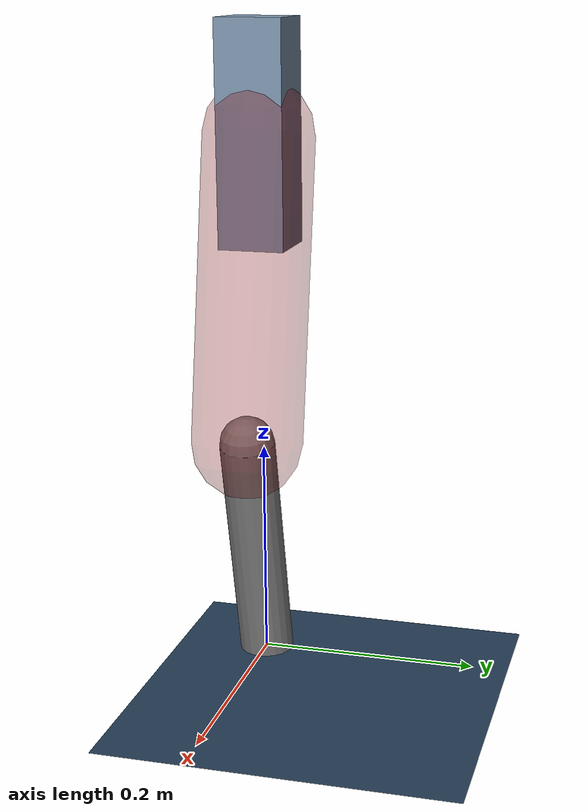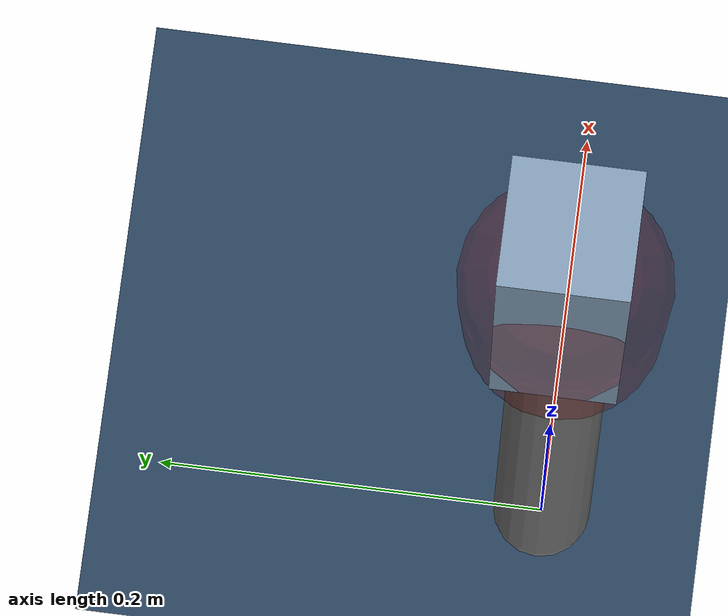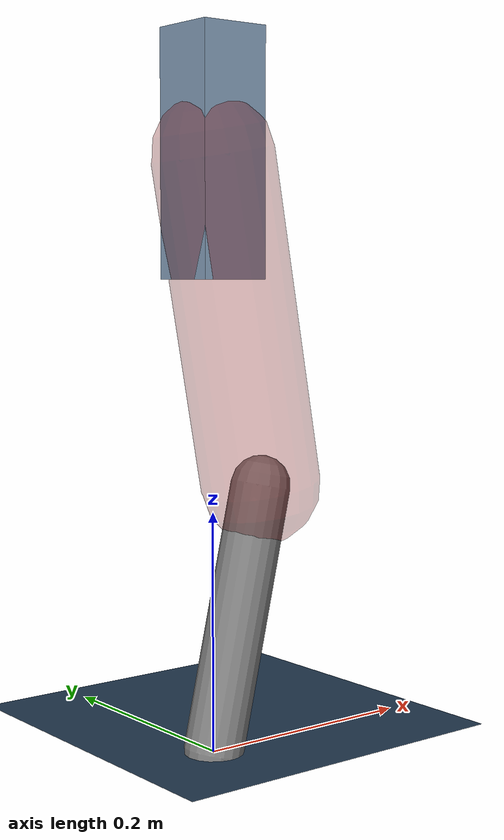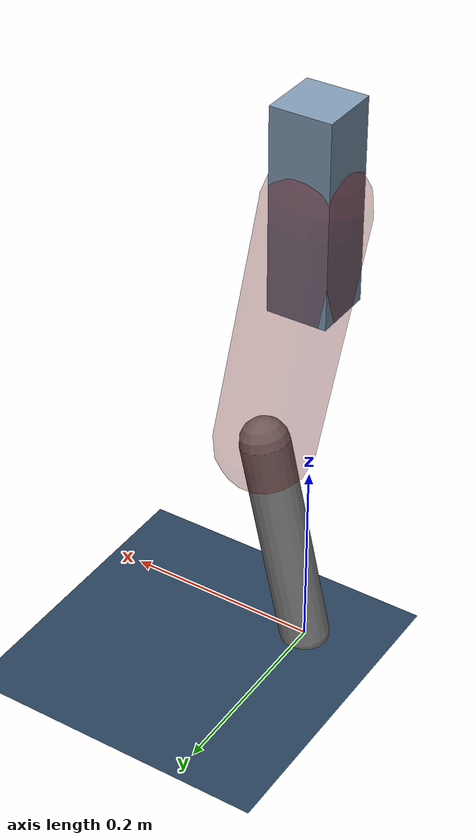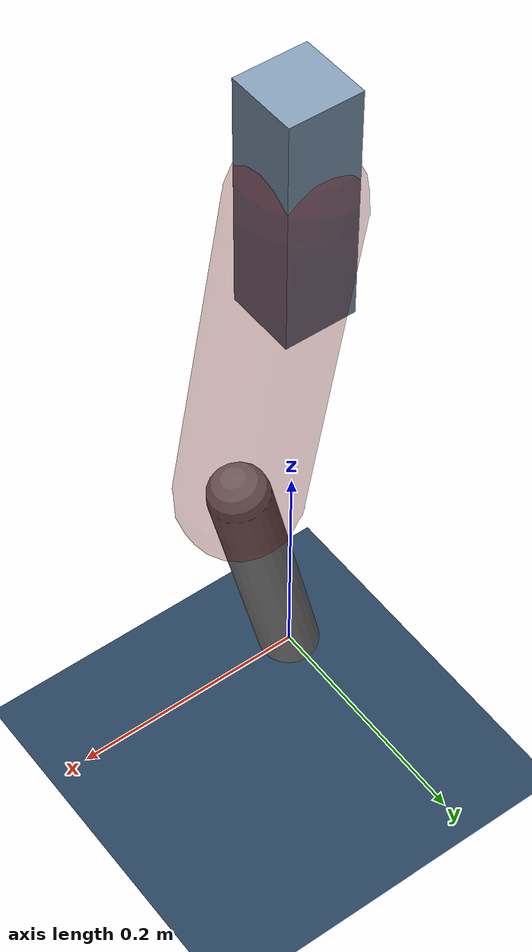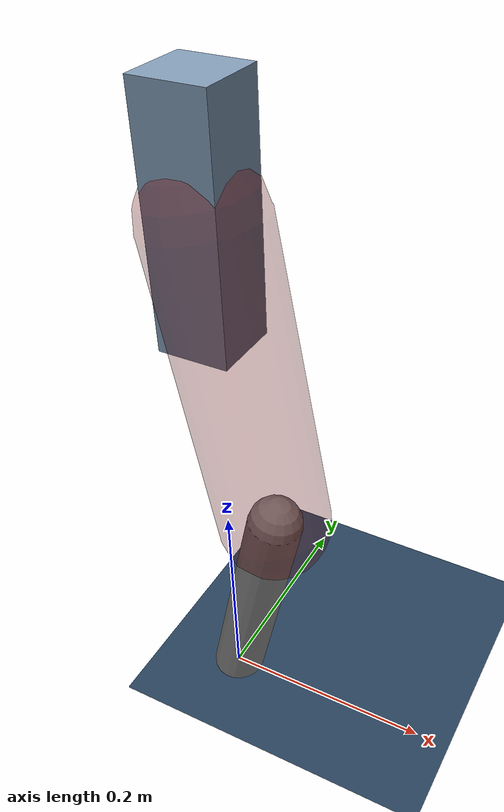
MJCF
<mujoco model="Hopper2D">
	<compiler inertiafromgeom="true" angle="radian" />
	<option timestep="0.001" integrator="implicit" cone="elliptic" solver="Newton" tolerance="1e-10" />

	<default>
		<geom contype="1" conaffinity="1" condim="3" friction="2 0.005 0.0001" solref="0.005 1" />
		<joint limited="true" damping="0.1" />
	</default>

	<asset>
		<texture name="skybox" type="skybox" builtin="gradient" rgb1=".4 .6 .8" rgb2="0 0 0" width="800" height="800" />
		<texture name="grid" type="2d" builtin="checker" rgb1=".1 .2 .3" rgb2=".2 .3 .4" width="300" height="300" mark="edge" markrgb=".2 .3 .4" />
		<material name="ground" texture="grid" texrepeat="1 1" texuniform="true" reflectance="0.1" />
		<material name="leg" rgba="0.5 0.6 0.7 1" />
	</asset>

	<worldbody>

		<geom name="floor" type="plane" size="5 5 0.25" material="ground" />

		<light directional="false" diffuse="0.8 0.8 0.8" specular="0.3 0.3 0.3" pos="0 0 2" dir="0 0 -1" />
		<light mode="targetbodycom" target="base" directional="false" diffuse="0.8 0.8 0.8" specular="0.3 0.3 0.3" pos="0 0 2" dir="0 0 -1" />

		<camera name="fixed" pos="0 -2 1" xyaxes="1 0 0 0 0 1" />
		<camera name="tracking" mode="trackcom" pos="0 -3 1" />

		<body name="root" pos="0 0 0.4900249700271915">
			<joint name="slide_x" type="slide" axis="1 0 0" range="-100 100" />
			<joint name="slide_z" type="slide" axis="0 0 1" range="0 10" />

			<body name="base" pos="0 0 0">
				<geom name="torso" type="box" size="0.03 0.03 0.1" mass="2.177" material="leg" />

				<body name="link1" pos="0 0 0" euler="0 1.3902439398315076 0">
					<joint type="hinge" axis="0 -1 0" pos="0 0 0" name="hinge1" limited="true" range="-3.14 3.14" stiffness="0" damping="0.1" />
					<geom name="thigh" type="capsule" fromto="0 0 0 0.2755415673658945 0 0" size="0.05" rgba="0.5 0 0 0.3" mass="0.9233080751513257" />

					<body name="link2" pos="0.2755415673658945 0 0" euler="0 0.40279375778439663 0">
						<joint type="hinge" axis="0 -1 0" pos="0 0 0" name="hinge2" limited="true" range="-3.14 3.14" stiffness="0" damping="0.1" />
						<geom name="shank" type="capsule" fromto="0 0 0 0.2244834026612969 0 0" size="0.025" mass="0.4213867221290375" />

					</body>
				</body>
			</body>
		</body>
	</worldbody>

	<actuator>
		<motor name="torque1" joint="hinge1" ctrlrange="-33.753241445066564 33.753241445066564" ctrllimited="true" gear="1" />
		<motor name="torque2" joint="hinge2" ctrlrange="-99.62604002006312 99.62604002006312" ctrllimited="true" gear="1" />
	</actuator>
</mujoco>
